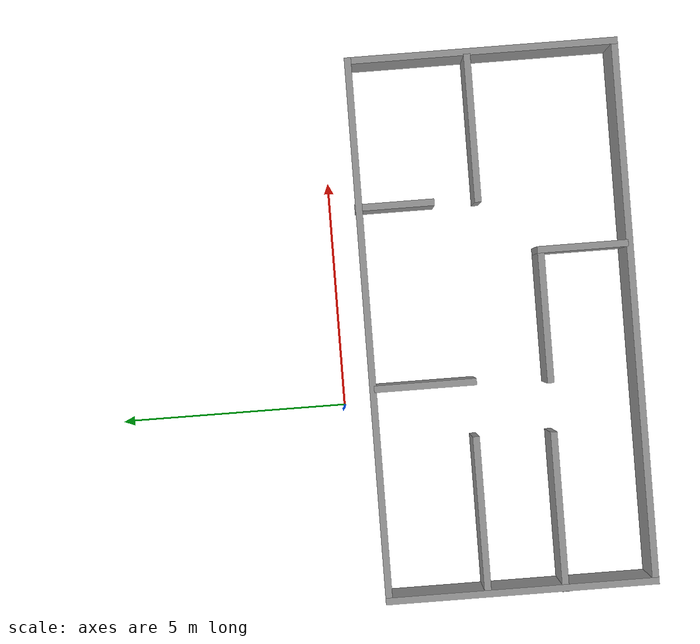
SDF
<?xml version='1.0'?>
<sdf version='1.7'>
  <model name='room'>
    <pose>1.62367 -3.28875 0 0 -0 0</pose>
    <link name='Wall_0'>
      <collision name='Wall_0_Collision'>
        <geometry>
          <box>
            <size>6 0.15 2.5</size>
          </box>
        </geometry>
        <pose>0 0 1.25 0 -0 0</pose>
      </collision>
      <visual name='Wall_0_Visual'>
        <pose>0 0 1.25 0 -0 0</pose>
        <geometry>
          <box>
            <size>6 0.15 2.5</size>
          </box>
        </geometry>
        <material>
          <script>
            <uri>file://media/materials/scripts/gazebo.material</uri>
            <name>Gazebo/Grey</name>
          </script>
          <ambient>1 1 1 1</ambient>
        </material>
        <meta>
          <layer>0</layer>
        </meta>
      </visual>
      <pose>-5.92057 -0.288752 0 0 -0 -1.5708</pose>
    </link>
    <link name='Wall_11'>
      <collision name='Wall_11_Collision'>
        <geometry>
          <box>
            <size>2.25 0.15 2.5</size>
          </box>
        </geometry>
        <pose>0 0 1.25 0 -0 0</pose>
      </collision>
      <visual name='Wall_11_Visual'>
        <pose>0 0 1.25 0 -0 0</pose>
        <geometry>
          <box>
            <size>2.25 0.15 2.5</size>
          </box>
        </geometry>
        <material>
          <script>
            <uri>file://media/materials/scripts/gazebo.material</uri>
            <name>Gazebo/Grey</name>
          </script>
          <ambient>1 1 1 1</ambient>
        </material>
        <meta>
          <layer>0</layer>
        </meta>
      </visual>
      <pose>-1.27526 1.48542 0 0 -0 1.5708</pose>
    </link>
    <link name='Wall_14'>
      <collision name='Wall_14_Collision'>
        <geometry>
          <box>
            <size>3.5 0.15 2.5</size>
          </box>
        </geometry>
        <pose>0 0 1.25 0 -0 0</pose>
      </collision>
      <visual name='Wall_14_Visual'>
        <pose>0 0 1.25 0 -0 0</pose>
        <geometry>
          <box>
            <size>3.5 0.15 2.5</size>
          </box>
        </geometry>
        <material>
          <script>
            <uri>file://media/materials/scripts/gazebo.material</uri>
            <name>Gazebo/Grey</name>
          </script>
          <ambient>1 1 1 1</ambient>
        </material>
        <meta>
          <layer>0</layer>
        </meta>
      </visual>
      <pose>-4.22401 0.465843 0 0 -0 0</pose>
    </link>
    <link name='Wall_19'>
      <collision name='Wall_19_Collision'>
        <geometry>
          <box>
            <size>3.5 0.15 2.5</size>
          </box>
        </geometry>
        <pose>0 0 1.25 0 -0 0</pose>
      </collision>
      <visual name='Wall_19_Visual'>
        <pose>0 0 1.25 0 -0 0</pose>
        <geometry>
          <box>
            <size>3.5 0.15 2.5</size>
          </box>
        </geometry>
        <material>
          <script>
            <uri>file://media/materials/scripts/gazebo.material</uri>
            <name>Gazebo/Grey</name>
          </script>
          <ambient>1 1 1 1</ambient>
        </material>
        <meta>
          <layer>0</layer>
        </meta>
      </visual>
      <pose>-4.25443 -1.23754 0 0 -0 0</pose>
    </link>
    <link name='Wall_2'>
      <collision name='Wall_2_Collision'>
        <geometry>
          <box>
            <size>12 0.15 2.5</size>
          </box>
        </geometry>
        <pose>0 0 1.25 0 -0 0</pose>
      </collision>
      <visual name='Wall_2_Visual'>
        <pose>0 0 1.25 0 -0 0</pose>
        <geometry>
          <box>
            <size>12 0.15 2.5</size>
          </box>
        </geometry>
        <material>
          <script>
            <uri>file://media/materials/scripts/gazebo.material</uri>
            <name>Gazebo/Grey</name>
          </script>
          <ambient>1 1 1 1</ambient>
        </material>
        <meta>
          <layer>0</layer>
        </meta>
      </visual>
      <pose>0.004431 2.63625 0 0 -0 0</pose>
    </link>
    <link name='Wall_21'>
      <collision name='Wall_21_Collision'>
        <geometry>
          <box>
            <size>2 0.15 2.5</size>
          </box>
        </geometry>
        <pose>0 0 1.25 0 -0 0</pose>
      </collision>
      <visual name='Wall_21_Visual'>
        <pose>0 0 1.25 0 -0 0</pose>
        <geometry>
          <box>
            <size>2 0.15 2.5</size>
          </box>
        </geometry>
        <material>
          <script>
            <uri>file://media/materials/scripts/gazebo.material</uri>
            <name>Gazebo/Grey</name>
          </script>
          <ambient>1 1 1 1</ambient>
        </material>
        <meta>
          <layer>0</layer>
        </meta>
      </visual>
      <pose>1.49244 -2.18321 0 0 -0 1.5708</pose>
    </link>
    <link name='Wall_22'>
      <collision name='Wall_22_Collision'>
        <geometry>
          <box>
            <size>3 0.15 2.5</size>
          </box>
        </geometry>
        <pose>0 0 1.25 0 -0 0</pose>
      </collision>
      <visual name='Wall_22_Visual'>
        <pose>0 0 1.25 0 -0 0</pose>
        <geometry>
          <box>
            <size>3 0.15 2.5</size>
          </box>
        </geometry>
        <material>
          <script>
            <uri>file://media/materials/scripts/gazebo.material</uri>
            <name>Gazebo/Grey</name>
          </script>
          <ambient>1 1 1 1</ambient>
        </material>
        <meta>
          <layer>0</layer>
        </meta>
      </visual>
      <pose>0.067439 -1.25821 0 0 -0 3.14159</pose>
    </link>
    <link name='Wall_27'>
      <collision name='Wall_27_Collision'>
        <geometry>
          <box>
            <size>3.25 0.15 2.5</size>
          </box>
        </geometry>
        <pose>0 0 1.25 0 -0 0</pose>
      </collision>
      <visual name='Wall_27_Visual'>
        <pose>0 0 1.25 0 -0 0</pose>
        <geometry>
          <box>
            <size>3.25 0.15 2.5</size>
          </box>
        </geometry>
        <material>
          <script>
            <uri>file://media/materials/scripts/gazebo.material</uri>
            <name>Gazebo/Grey</name>
          </script>
          <ambient>1 1 1 1</ambient>
        </material>
        <meta>
          <layer>0</layer>
        </meta>
      </visual>
      <pose>4.25914 0.025485 0 0 -0 0</pose>
    </link>
    <link name='Wall_29'>
      <collision name='Wall_29_Collision'>
        <geometry>
          <box>
            <size>1.75 0.15 2.5</size>
          </box>
        </geometry>
        <pose>0 0 1.25 0 -0 0</pose>
      </collision>
      <visual name='Wall_29_Visual'>
        <pose>0 0 1.25 0 -0 0</pose>
        <geometry>
          <box>
            <size>1.75 0.15 2.5</size>
          </box>
        </geometry>
        <material>
          <script>
            <uri>file://media/materials/scripts/gazebo.material</uri>
            <name>Gazebo/Grey</name>
          </script>
          <ambient>1 1 1 1</ambient>
        </material>
        <meta>
          <layer>0</layer>
        </meta>
      </visual>
      <pose>2.70914 1.8559 0 0 -0 -1.5708</pose>
    </link>
    <link name='Wall_3'>
      <collision name='Wall_3_Collision'>
        <geometry>
          <box>
            <size>6 0.15 2.5</size>
          </box>
        </geometry>
        <pose>0 0 1.25 0 -0 0</pose>
      </collision>
      <visual name='Wall_3_Visual'>
        <pose>0 0 1.25 0 -0 0</pose>
        <geometry>
          <box>
            <size>6 0.15 2.5</size>
          </box>
        </geometry>
        <material>
          <script>
            <uri>file://media/materials/scripts/gazebo.material</uri>
            <name>Gazebo/Grey</name>
          </script>
          <ambient>1 1 1 1</ambient>
        </material>
        <meta>
          <layer>0</layer>
        </meta>
      </visual>
      <pose>5.92943 -0.288752 0 0 -0 -1.5708</pose>
    </link>
    <link name='Wall_4'>
      <collision name='Wall_4_Collision'>
        <geometry>
          <box>
            <size>12 0.15 2.5</size>
          </box>
        </geometry>
        <pose>0 0 1.25 0 -0 0</pose>
      </collision>
      <visual name='Wall_4_Visual'>
        <pose>0 0 1.25 0 -0 0</pose>
        <geometry>
          <box>
            <size>12 0.15 2.5</size>
          </box>
        </geometry>
        <material>
          <script>
            <uri>file://media/materials/scripts/gazebo.material</uri>
            <name>Gazebo/Grey</name>
          </script>
          <ambient>1 1 1 1</ambient>
        </material>
        <meta>
          <layer>0</layer>
        </meta>
      </visual>
      <pose>0.004431 -3.21375 0 0 -0 3.14159</pose>
    </link>
    <static>1</static>
  </model>
</sdf>
